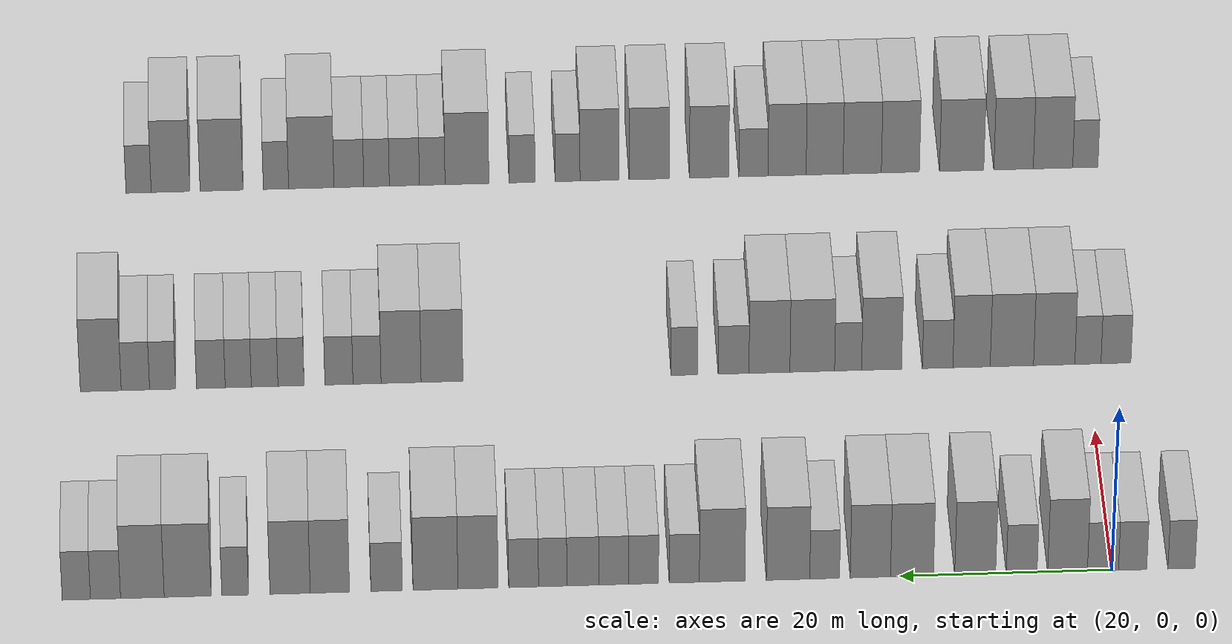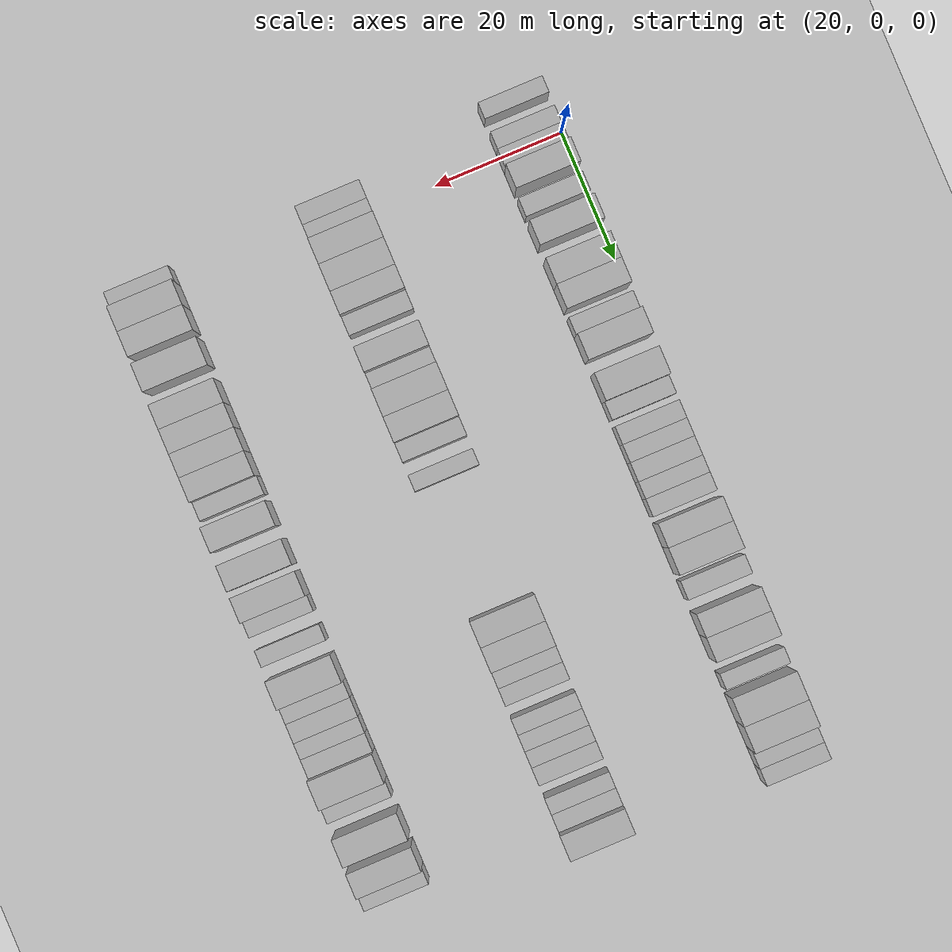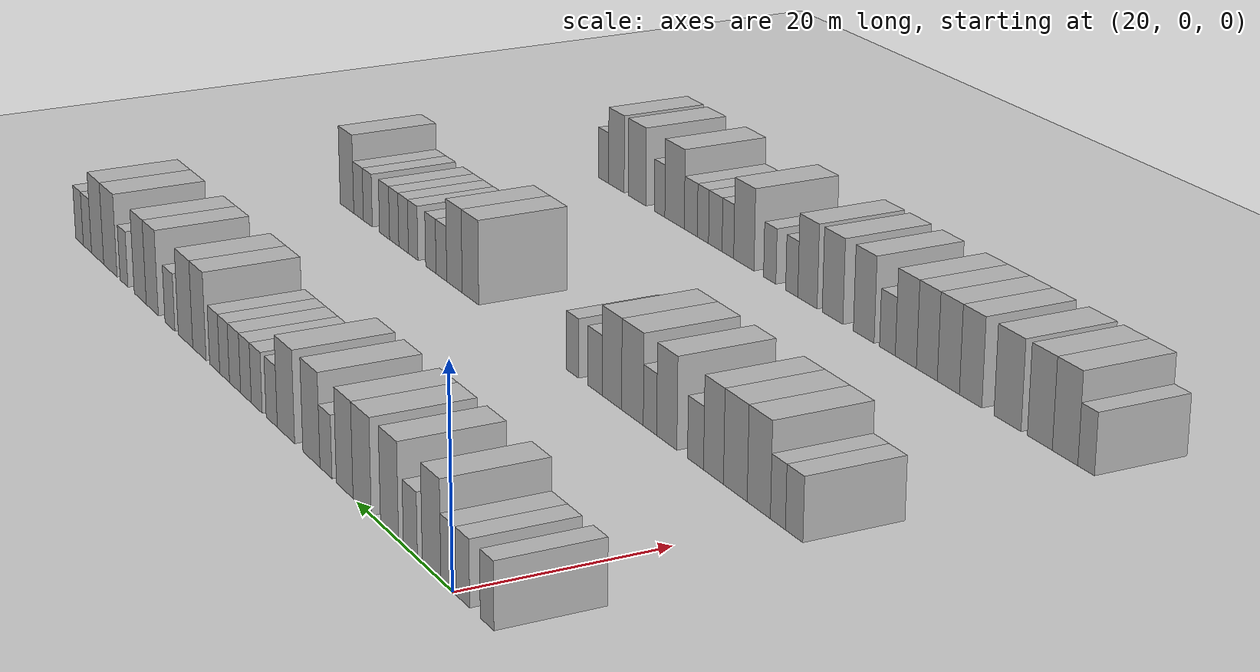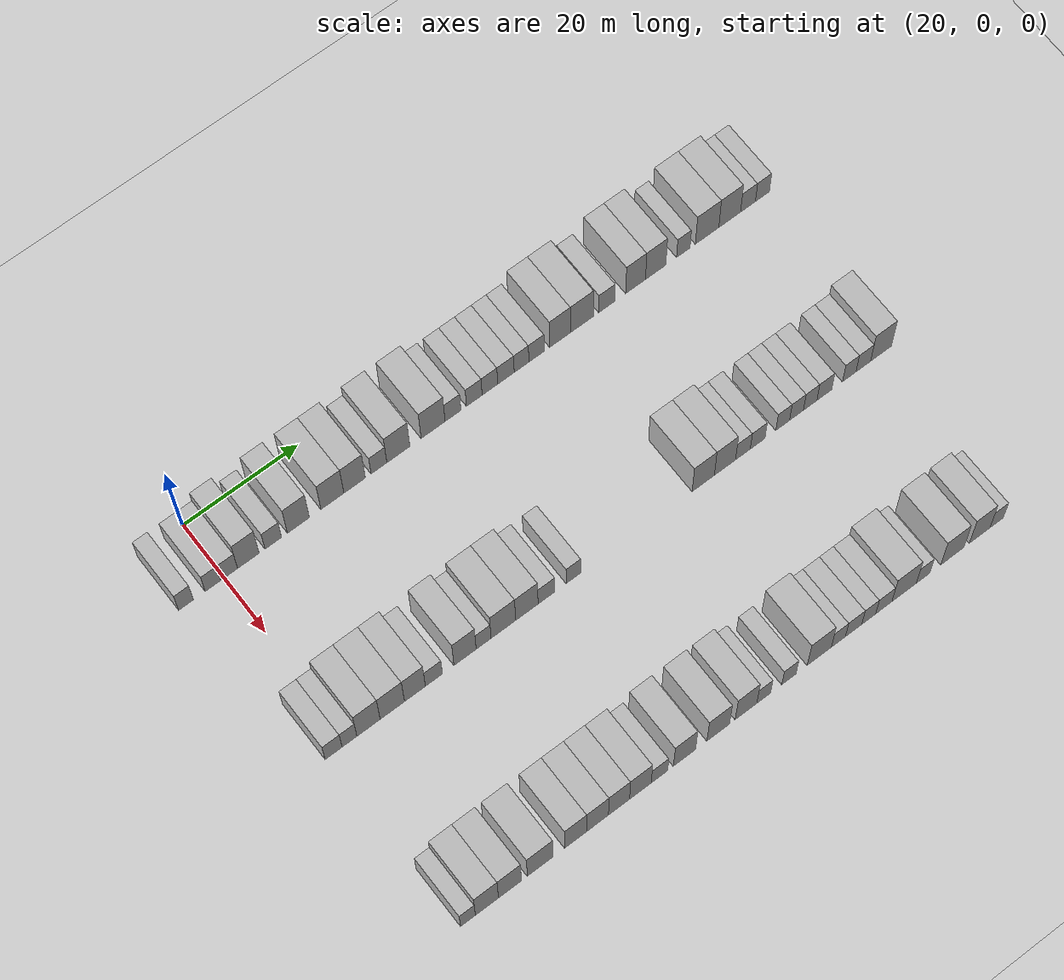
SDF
<sdf version="1.6">
 <world name="default">
  <include><name>ground_plane_1</name><uri>model://HANNAS_ground_plane</uri></include>
  <model name="building_113">
   <static>1</static>
   <pose>25.0000 -6.4764 0 0.000000 0.000000 0.000000</pose>
   <link name="link">
    <pose>0 0 3.00 0 0 0</pose>
    <collision name="collision"><geometry><box><size>10.0000 2.5500 6.0000</size></box></geometry></collision>
    <visual name="visual">
     <cast_shadows>0</cast_shadows>
     <geometry><box><size>10.0000 2.5500 6.0000</size></box></geometry>
     <material>
      <script>
       <uri>model://HANNAS_wall/materials/scripts</uri>
       <uri>model://HANNAS_wall/materials/textures</uri>
       <name>vrc/HANNAS_wall</name>
      </script>
     </material>
    </visual>
   </link>
  </model>
  <model name="building_114">
   <static>1</static>
   <pose>25.0000 -1.8726 0 0.000000 0.000000 0.000000</pose>
   <link name="link">
    <pose>0 0 3.00 0 0 0</pose>
    <collision name="collision"><geometry><box><size>10.0000 2.6576 6.0000</size></box></geometry></collision>
    <visual name="visual">
     <cast_shadows>0</cast_shadows>
     <geometry><box><size>10.0000 2.6576 6.0000</size></box></geometry>
     <material>
      <script>
       <uri>model://HANNAS_wall/materials/scripts</uri>
       <uri>model://HANNAS_wall/materials/textures</uri>
       <name>vrc/HANNAS_wall</name>
      </script>
     </material>
    </visual>
   </link>
  </model>
  <model name="building_115">
   <static>1</static>
   <pose>25.0000 0.9179 0 0.000000 0.000000 0.000000</pose>
   <link name="link">
    <pose>0 0 3.00 0 0 0</pose>
    <collision name="collision"><geometry><box><size>10.0000 2.9234 6.0000</size></box></geometry></collision>
    <visual name="visual">
     <cast_shadows>0</cast_shadows>
     <geometry><box><size>10.0000 2.9234 6.0000</size></box></geometry>
     <material>
      <script>
       <uri>model://HANNAS_wall/materials/scripts</uri>
       <uri>model://HANNAS_wall/materials/textures</uri>
       <name>vrc/HANNAS_wall</name>
      </script>
     </material>
    </visual>
   </link>
  </model>
  <model name="building_116">
   <static>1</static>
   <pose>25.0000 4.2474 0 0.000000 0.000000 0.000000</pose>
   <link name="link">
    <pose>0 0 4.50 0 0 0</pose>
    <collision name="collision"><geometry><box><size>10.0000 3.7355 9.0000</size></box></geometry></collision>
    <visual name="visual">
     <cast_shadows>0</cast_shadows>
     <geometry><box><size>10.0000 3.7355 9.0000</size></box></geometry>
     <material>
      <script>
       <uri>model://HANNAS_wall/materials/scripts</uri>
       <uri>model://HANNAS_wall/materials/textures</uri>
       <name>vrc/HANNAS_wall</name>
      </script>
     </material>
    </visual>
   </link>
  </model>
  <model name="building_117">
   <static>1</static>
   <pose>25.0000 8.5626 0 0.000000 0.000000 0.000000</pose>
   <link name="link">
    <pose>0 0 3.00 0 0 0</pose>
    <collision name="collision"><geometry><box><size>10.0000 2.8949 6.0000</size></box></geometry></collision>
    <visual name="visual">
     <cast_shadows>0</cast_shadows>
     <geometry><box><size>10.0000 2.8949 6.0000</size></box></geometry>
     <material>
      <script>
       <uri>model://HANNAS_wall/materials/scripts</uri>
       <uri>model://HANNAS_wall/materials/textures</uri>
       <name>vrc/HANNAS_wall</name>
      </script>
     </material>
    </visual>
   </link>
  </model>
  <model name="building_118">
   <static>1</static>
   <pose>25.0000 12.9319 0 0.000000 0.000000 0.000000</pose>
   <link name="link">
    <pose>0 0 4.50 0 0 0</pose>
    <collision name="collision"><geometry><box><size>10.0000 3.8437 9.0000</size></box></geometry></collision>
    <visual name="visual">
     <cast_shadows>0</cast_shadows>
     <geometry><box><size>10.0000 3.8437 9.0000</size></box></geometry>
     <material>
      <script>
       <uri>model://HANNAS_wall/materials/scripts</uri>
       <uri>model://HANNAS_wall/materials/textures</uri>
       <name>vrc/HANNAS_wall</name>
      </script>
     </material>
    </visual>
   </link>
  </model>
  <model name="building_119">
   <static>1</static>
   <pose>25.0000 18.8703 0 0.000000 0.000000 0.000000</pose>
   <link name="link">
    <pose>0 0 4.50 0 0 0</pose>
    <collision name="collision"><geometry><box><size>10.0000 4.0331 9.0000</size></box></geometry></collision>
    <visual name="visual">
     <cast_shadows>0</cast_shadows>
     <geometry><box><size>10.0000 4.0331 9.0000</size></box></geometry>
     <material>
      <script>
       <uri>model://HANNAS_wall/materials/scripts</uri>
       <uri>model://HANNAS_wall/materials/textures</uri>
       <name>vrc/HANNAS_wall</name>
      </script>
     </material>
    </visual>
   </link>
  </model>
  <model name="building_120">
   <static>1</static>
   <pose>25.0000 22.7797 0 0.000000 0.000000 0.000000</pose>
   <link name="link">
    <pose>0 0 4.50 0 0 0</pose>
    <collision name="collision"><geometry><box><size>10.0000 3.7856 9.0000</size></box></geometry></collision>
    <visual name="visual">
     <cast_shadows>0</cast_shadows>
     <geometry><box><size>10.0000 3.7856 9.0000</size></box></geometry>
     <material>
      <script>
       <uri>model://HANNAS_wall/materials/scripts</uri>
       <uri>model://HANNAS_wall/materials/textures</uri>
       <name>vrc/HANNAS_wall</name>
      </script>
     </material>
    </visual>
   </link>
  </model>
  <model name="building_121">
   <static>1</static>
   <pose>25.0000 27.0711 0 0.000000 0.000000 0.000000</pose>
   <link name="link">
    <pose>0 0 3.00 0 0 0</pose>
    <collision name="collision"><geometry><box><size>10.0000 2.7973 6.0000</size></box></geometry></collision>
    <visual name="visual">
     <cast_shadows>0</cast_shadows>
     <geometry><box><size>10.0000 2.7973 6.0000</size></box></geometry>
     <material>
      <script>
       <uri>model://HANNAS_wall/materials/scripts</uri>
       <uri>model://HANNAS_wall/materials/textures</uri>
       <name>vrc/HANNAS_wall</name>
      </script>
     </material>
    </visual>
   </link>
  </model>
  <model name="building_122">
   <static>1</static>
   <pose>25.0000 30.5075 0 0.000000 0.000000 0.000000</pose>
   <link name="link">
    <pose>0 0 4.50 0 0 0</pose>
    <collision name="collision"><geometry><box><size>10.0000 4.0754 9.0000</size></box></geometry></collision>
    <visual name="visual">
     <cast_shadows>0</cast_shadows>
     <geometry><box><size>10.0000 4.0754 9.0000</size></box></geometry>
     <material>
      <script>
       <uri>model://HANNAS_wall/materials/scripts</uri>
       <uri>model://HANNAS_wall/materials/textures</uri>
       <name>vrc/HANNAS_wall</name>
      </script>
     </material>
    </visual>
   </link>
  </model>
  <model name="building_123">
   <static>1</static>
   <pose>25.0000 36.6862 0 0.000000 0.000000 0.000000</pose>
   <link name="link">
    <pose>0 0 4.50 0 0 0</pose>
    <collision name="collision"><geometry><box><size>10.0000 4.2821 9.0000</size></box></geometry></collision>
    <visual name="visual">
     <cast_shadows>0</cast_shadows>
     <geometry><box><size>10.0000 4.2821 9.0000</size></box></geometry>
     <material>
      <script>
       <uri>model://HANNAS_wall/materials/scripts</uri>
       <uri>model://HANNAS_wall/materials/textures</uri>
       <name>vrc/HANNAS_wall</name>
      </script>
     </material>
    </visual>
   </link>
  </model>
  <model name="building_124">
   <static>1</static>
   <pose>25.0000 40.2397 0 0.000000 0.000000 0.000000</pose>
   <link name="link">
    <pose>0 0 3.00 0 0 0</pose>
    <collision name="collision"><geometry><box><size>10.0000 2.8249 6.0000</size></box></geometry></collision>
    <visual name="visual">
     <cast_shadows>0</cast_shadows>
     <geometry><box><size>10.0000 2.8249 6.0000</size></box></geometry>
     <material>
      <script>
       <uri>model://HANNAS_wall/materials/scripts</uri>
       <uri>model://HANNAS_wall/materials/textures</uri>
       <name>vrc/HANNAS_wall</name>
      </script>
     </material>
    </visual>
   </link>
  </model>
  <model name="building_125">
   <static>1</static>
   <pose>25.0000 44.0588 0 0.000000 0.000000 0.000000</pose>
   <link name="link">
    <pose>0 0 3.00 0 0 0</pose>
    <collision name="collision"><geometry><box><size>10.0000 2.8134 6.0000</size></box></geometry></collision>
    <visual name="visual">
     <cast_shadows>0</cast_shadows>
     <geometry><box><size>10.0000 2.8134 6.0000</size></box></geometry>
     <material>
      <script>
       <uri>model://HANNAS_wall/materials/scripts</uri>
       <uri>model://HANNAS_wall/materials/textures</uri>
       <name>vrc/HANNAS_wall</name>
      </script>
     </material>
    </visual>
   </link>
  </model>
  <model name="building_126">
   <static>1</static>
   <pose>25.0000 46.8677 0 0.000000 0.000000 0.000000</pose>
   <link name="link">
    <pose>0 0 3.00 0 0 0</pose>
    <collision name="collision"><geometry><box><size>10.0000 2.8043 6.0000</size></box></geometry></collision>
    <visual name="visual">
     <cast_shadows>0</cast_shadows>
     <geometry><box><size>10.0000 2.8043 6.0000</size></box></geometry>
     <material>
      <script>
       <uri>model://HANNAS_wall/materials/scripts</uri>
       <uri>model://HANNAS_wall/materials/textures</uri>
       <name>vrc/HANNAS_wall</name>
      </script>
     </material>
    </visual>
   </link>
  </model>
  <model name="building_127">
   <static>1</static>
   <pose>25.0000 49.7630 0 0.000000 0.000000 0.000000</pose>
   <link name="link">
    <pose>0 0 3.00 0 0 0</pose>
    <collision name="collision"><geometry><box><size>10.0000 2.9864 6.0000</size></box></geometry></collision>
    <visual name="visual">
     <cast_shadows>0</cast_shadows>
     <geometry><box><size>10.0000 2.9864 6.0000</size></box></geometry>
     <material>
      <script>
       <uri>model://HANNAS_wall/materials/scripts</uri>
       <uri>model://HANNAS_wall/materials/textures</uri>
       <name>vrc/HANNAS_wall</name>
      </script>
     </material>
    </visual>
   </link>
  </model>
  <model name="building_128">
   <static>1</static>
   <pose>25.0000 52.5827 0 0.000000 0.000000 0.000000</pose>
   <link name="link">
    <pose>0 0 3.00 0 0 0</pose>
    <collision name="collision"><geometry><box><size>10.0000 2.6529 6.0000</size></box></geometry></collision>
    <visual name="visual">
     <cast_shadows>0</cast_shadows>
     <geometry><box><size>10.0000 2.6529 6.0000</size></box></geometry>
     <material>
      <script>
       <uri>model://HANNAS_wall/materials/scripts</uri>
       <uri>model://HANNAS_wall/materials/textures</uri>
       <name>vrc/HANNAS_wall</name>
      </script>
     </material>
    </visual>
   </link>
  </model>
  <model name="building_129">
   <static>1</static>
   <pose>25.0000 55.3031 0 0.000000 0.000000 0.000000</pose>
   <link name="link">
    <pose>0 0 3.00 0 0 0</pose>
    <collision name="collision"><geometry><box><size>10.0000 2.7879 6.0000</size></box></geometry></collision>
    <visual name="visual">
     <cast_shadows>0</cast_shadows>
     <geometry><box><size>10.0000 2.7879 6.0000</size></box></geometry>
     <material>
      <script>
       <uri>model://HANNAS_wall/materials/scripts</uri>
       <uri>model://HANNAS_wall/materials/textures</uri>
       <name>vrc/HANNAS_wall</name>
      </script>
     </material>
    </visual>
   </link>
  </model>
  <model name="building_130">
   <static>1</static>
   <pose>25.0000 59.5758 0 0.000000 0.000000 0.000000</pose>
   <link name="link">
    <pose>0 0 4.50 0 0 0</pose>
    <collision name="collision"><geometry><box><size>10.0000 3.7576 9.0000</size></box></geometry></collision>
    <visual name="visual">
     <cast_shadows>0</cast_shadows>
     <geometry><box><size>10.0000 3.7576 9.0000</size></box></geometry>
     <material>
      <script>
       <uri>model://HANNAS_wall/materials/scripts</uri>
       <uri>model://HANNAS_wall/materials/textures</uri>
       <name>vrc/HANNAS_wall</name>
      </script>
     </material>
    </visual>
   </link>
  </model>
  <model name="building_131">
   <static>1</static>
   <pose>25.0000 63.5560 0 0.000000 0.000000 0.000000</pose>
   <link name="link">
    <pose>0 0 4.50 0 0 0</pose>
    <collision name="collision"><geometry><box><size>10.0000 4.2028 9.0000</size></box></geometry></collision>
    <visual name="visual">
     <cast_shadows>0</cast_shadows>
     <geometry><box><size>10.0000 4.2028 9.0000</size></box></geometry>
     <material>
      <script>
       <uri>model://HANNAS_wall/materials/scripts</uri>
       <uri>model://HANNAS_wall/materials/textures</uri>
       <name>vrc/HANNAS_wall</name>
      </script>
     </material>
    </visual>
   </link>
  </model>
  <model name="building_132">
   <static>1</static>
   <pose>25.0000 68.1324 0 0.000000 0.000000 0.000000</pose>
   <link name="link">
    <pose>0 0 3.00 0 0 0</pose>
    <collision name="collision"><geometry><box><size>10.0000 2.9500 6.0000</size></box></geometry></collision>
    <visual name="visual">
     <cast_shadows>0</cast_shadows>
     <geometry><box><size>10.0000 2.9500 6.0000</size></box></geometry>
     <material>
      <script>
       <uri>model://HANNAS_wall/materials/scripts</uri>
       <uri>model://HANNAS_wall/materials/textures</uri>
       <name>vrc/HANNAS_wall</name>
      </script>
     </material>
    </visual>
   </link>
  </model>
  <model name="building_133">
   <static>1</static>
   <pose>25.0000 73.4419 0 0.000000 0.000000 0.000000</pose>
   <link name="link">
    <pose>0 0 4.50 0 0 0</pose>
    <collision name="collision"><geometry><box><size>10.0000 3.6689 9.0000</size></box></geometry></collision>
    <visual name="visual">
     <cast_shadows>0</cast_shadows>
     <geometry><box><size>10.0000 3.6689 9.0000</size></box></geometry>
     <material>
      <script>
       <uri>model://HANNAS_wall/materials/scripts</uri>
       <uri>model://HANNAS_wall/materials/textures</uri>
       <name>vrc/HANNAS_wall</name>
      </script>
     </material>
    </visual>
   </link>
  </model>
  <model name="building_134">
   <static>1</static>
   <pose>25.0000 77.1608 0 0.000000 0.000000 0.000000</pose>
   <link name="link">
    <pose>0 0 4.50 0 0 0</pose>
    <collision name="collision"><geometry><box><size>10.0000 3.7689 9.0000</size></box></geometry></collision>
    <visual name="visual">
     <cast_shadows>0</cast_shadows>
     <geometry><box><size>10.0000 3.7689 9.0000</size></box></geometry>
     <material>
      <script>
       <uri>model://HANNAS_wall/materials/scripts</uri>
       <uri>model://HANNAS_wall/materials/textures</uri>
       <name>vrc/HANNAS_wall</name>
      </script>
     </material>
    </visual>
   </link>
  </model>
  <model name="building_135">
   <static>1</static>
   <pose>25.0000 82.2953 0 0.000000 0.000000 0.000000</pose>
   <link name="link">
    <pose>0 0 3.00 0 0 0</pose>
    <collision name="collision"><geometry><box><size>10.0000 2.4999 6.0000</size></box></geometry></collision>
    <visual name="visual">
     <cast_shadows>0</cast_shadows>
     <geometry><box><size>10.0000 2.4999 6.0000</size></box></geometry>
     <material>
      <script>
       <uri>model://HANNAS_wall/materials/scripts</uri>
       <uri>model://HANNAS_wall/materials/textures</uri>
       <name>vrc/HANNAS_wall</name>
      </script>
     </material>
    </visual>
   </link>
  </model>
  <model name="building_136">
   <static>1</static>
   <pose>25.0000 86.7389 0 0.000000 0.000000 0.000000</pose>
   <link name="link">
    <pose>0 0 4.50 0 0 0</pose>
    <collision name="collision"><geometry><box><size>10.0000 4.3873 9.0000</size></box></geometry></collision>
    <visual name="visual">
     <cast_shadows>0</cast_shadows>
     <geometry><box><size>10.0000 4.3873 9.0000</size></box></geometry>
     <material>
      <script>
       <uri>model://HANNAS_wall/materials/scripts</uri>
       <uri>model://HANNAS_wall/materials/textures</uri>
       <name>vrc/HANNAS_wall</name>
      </script>
     </material>
    </visual>
   </link>
  </model>
  <model name="building_137">
   <static>1</static>
   <pose>25.0000 90.9745 0 0.000000 0.000000 0.000000</pose>
   <link name="link">
    <pose>0 0 4.50 0 0 0</pose>
    <collision name="collision"><geometry><box><size>10.0000 4.0841 9.0000</size></box></geometry></collision>
    <visual name="visual">
     <cast_shadows>0</cast_shadows>
     <geometry><box><size>10.0000 4.0841 9.0000</size></box></geometry>
     <material>
      <script>
       <uri>model://HANNAS_wall/materials/scripts</uri>
       <uri>model://HANNAS_wall/materials/textures</uri>
       <name>vrc/HANNAS_wall</name>
      </script>
     </material>
    </visual>
   </link>
  </model>
  <model name="building_138">
   <static>1</static>
   <pose>25.0000 94.4198 0 0.000000 0.000000 0.000000</pose>
   <link name="link">
    <pose>0 0 3.00 0 0 0</pose>
    <collision name="collision"><geometry><box><size>10.0000 2.8065 6.0000</size></box></geometry></collision>
    <visual name="visual">
     <cast_shadows>0</cast_shadows>
     <geometry><box><size>10.0000 2.8065 6.0000</size></box></geometry>
     <material>
      <script>
       <uri>model://HANNAS_wall/materials/scripts</uri>
       <uri>model://HANNAS_wall/materials/textures</uri>
       <name>vrc/HANNAS_wall</name>
      </script>
     </material>
    </visual>
   </link>
  </model>
  <model name="building_139">
   <static>1</static>
   <pose>25.0000 97.1392 0 0.000000 0.000000 0.000000</pose>
   <link name="link">
    <pose>0 0 3.00 0 0 0</pose>
    <collision name="collision"><geometry><box><size>10.0000 2.6323 6.0000</size></box></geometry></collision>
    <visual name="visual">
     <cast_shadows>0</cast_shadows>
     <geometry><box><size>10.0000 2.6323 6.0000</size></box></geometry>
     <material>
      <script>
       <uri>model://HANNAS_wall/materials/scripts</uri>
       <uri>model://HANNAS_wall/materials/textures</uri>
       <name>vrc/HANNAS_wall</name>
      </script>
     </material>
    </visual>
   </link>
  </model>
  <model name="building_345">
   <static>1</static>
   <pose>55.0000 -2.8157 0 0.000000 0.000000 0.000000</pose>
   <link name="link">
    <pose>0 0 3.00 0 0 0</pose>
    <collision name="collision"><geometry><box><size>10.0000 2.8895 6.0000</size></box></geometry></collision>
    <visual name="visual">
     <cast_shadows>0</cast_shadows>
     <geometry><box><size>10.0000 2.8895 6.0000</size></box></geometry>
     <material>
      <script>
       <uri>model://HANNAS_wall/materials/scripts</uri>
       <uri>model://HANNAS_wall/materials/textures</uri>
       <name>vrc/HANNAS_wall</name>
      </script>
     </material>
    </visual>
   </link>
  </model>
  <model name="building_346">
   <static>1</static>
   <pose>55.0000 -0.1084 0 0.000000 0.000000 0.000000</pose>
   <link name="link">
    <pose>0 0 3.00 0 0 0</pose>
    <collision name="collision"><geometry><box><size>10.0000 2.5249 6.0000</size></box></geometry></collision>
    <visual name="visual">
     <cast_shadows>0</cast_shadows>
     <geometry><box><size>10.0000 2.5249 6.0000</size></box></geometry>
     <material>
      <script>
       <uri>model://HANNAS_wall/materials/scripts</uri>
       <uri>model://HANNAS_wall/materials/textures</uri>
       <name>vrc/HANNAS_wall</name>
      </script>
     </material>
    </visual>
   </link>
  </model>
  <model name="building_347">
   <static>1</static>
   <pose>55.0000 3.1487 0 0.000000 0.000000 0.000000</pose>
   <link name="link">
    <pose>0 0 4.50 0 0 0</pose>
    <collision name="collision"><geometry><box><size>10.0000 3.9894 9.0000</size></box></geometry></collision>
    <visual name="visual">
     <cast_shadows>0</cast_shadows>
     <geometry><box><size>10.0000 3.9894 9.0000</size></box></geometry>
     <material>
      <script>
       <uri>model://HANNAS_wall/materials/scripts</uri>
       <uri>model://HANNAS_wall/materials/textures</uri>
       <name>vrc/HANNAS_wall</name>
      </script>
     </material>
    </visual>
   </link>
  </model>
  <model name="building_348">
   <static>1</static>
   <pose>55.0000 7.2363 0 0.000000 0.000000 0.000000</pose>
   <link name="link">
    <pose>0 0 4.50 0 0 0</pose>
    <collision name="collision"><geometry><box><size>10.0000 4.1858 9.0000</size></box></geometry></collision>
    <visual name="visual">
     <cast_shadows>0</cast_shadows>
     <geometry><box><size>10.0000 4.1858 9.0000</size></box></geometry>
     <material>
      <script>
       <uri>model://HANNAS_wall/materials/scripts</uri>
       <uri>model://HANNAS_wall/materials/textures</uri>
       <name>vrc/HANNAS_wall</name>
      </script>
     </material>
    </visual>
   </link>
  </model>
  <model name="building_349">
   <static>1</static>
   <pose>55.0000 11.1294 0 0.000000 0.000000 0.000000</pose>
   <link name="link">
    <pose>0 0 4.50 0 0 0</pose>
    <collision name="collision"><geometry><box><size>10.0000 3.6004 9.0000</size></box></geometry></collision>
    <visual name="visual">
     <cast_shadows>0</cast_shadows>
     <geometry><box><size>10.0000 3.6004 9.0000</size></box></geometry>
     <material>
      <script>
       <uri>model://HANNAS_wall/materials/scripts</uri>
       <uri>model://HANNAS_wall/materials/textures</uri>
       <name>vrc/HANNAS_wall</name>
      </script>
     </material>
    </visual>
   </link>
  </model>
  <model name="building_350">
   <static>1</static>
   <pose>55.0000 14.4045 0 0.000000 0.000000 0.000000</pose>
   <link name="link">
    <pose>0 0 3.00 0 0 0</pose>
    <collision name="collision"><geometry><box><size>10.0000 2.9497 6.0000</size></box></geometry></collision>
    <visual name="visual">
     <cast_shadows>0</cast_shadows>
     <geometry><box><size>10.0000 2.9497 6.0000</size></box></geometry>
     <material>
      <script>
       <uri>model://HANNAS_wall/materials/scripts</uri>
       <uri>model://HANNAS_wall/materials/textures</uri>
       <name>vrc/HANNAS_wall</name>
      </script>
     </material>
    </visual>
   </link>
  </model>
  <model name="building_351">
   <static>1</static>
   <pose>55.0000 19.8089 0 0.000000 0.000000 0.000000</pose>
   <link name="link">
    <pose>0 0 4.50 0 0 0</pose>
    <collision name="collision"><geometry><box><size>10.0000 3.8591 9.0000</size></box></geometry></collision>
    <visual name="visual">
     <cast_shadows>0</cast_shadows>
     <geometry><box><size>10.0000 3.8591 9.0000</size></box></geometry>
     <material>
      <script>
       <uri>model://HANNAS_wall/materials/scripts</uri>
       <uri>model://HANNAS_wall/materials/textures</uri>
       <name>vrc/HANNAS_wall</name>
      </script>
     </material>
    </visual>
   </link>
  </model>
  <model name="building_352">
   <static>1</static>
   <pose>55.0000 23.0390 0 0.000000 0.000000 0.000000</pose>
   <link name="link">
    <pose>0 0 3.00 0 0 0</pose>
    <collision name="collision"><geometry><box><size>10.0000 2.6013 6.0000</size></box></geometry></collision>
    <visual name="visual">
     <cast_shadows>0</cast_shadows>
     <geometry><box><size>10.0000 2.6013 6.0000</size></box></geometry>
     <material>
      <script>
       <uri>model://HANNAS_wall/materials/scripts</uri>
       <uri>model://HANNAS_wall/materials/textures</uri>
       <name>vrc/HANNAS_wall</name>
      </script>
     </material>
    </visual>
   </link>
  </model>
  <model name="building_353">
   <static>1</static>
   <pose>55.0000 26.4936 0 0.000000 0.000000 0.000000</pose>
   <link name="link">
    <pose>0 0 4.50 0 0 0</pose>
    <collision name="collision"><geometry><box><size>10.0000 4.3079 9.0000</size></box></geometry></collision>
    <visual name="visual">
     <cast_shadows>0</cast_shadows>
     <geometry><box><size>10.0000 4.3079 9.0000</size></box></geometry>
     <material>
      <script>
       <uri>model://HANNAS_wall/materials/scripts</uri>
       <uri>model://HANNAS_wall/materials/textures</uri>
       <name>vrc/HANNAS_wall</name>
      </script>
     </material>
    </visual>
   </link>
  </model>
  <model name="building_354">
   <static>1</static>
   <pose>55.0000 30.6224 0 0.000000 0.000000 0.000000</pose>
   <link name="link">
    <pose>0 0 4.50 0 0 0</pose>
    <collision name="collision"><geometry><box><size>10.0000 3.9496 9.0000</size></box></geometry></collision>
    <visual name="visual">
     <cast_shadows>0</cast_shadows>
     <geometry><box><size>10.0000 3.9496 9.0000</size></box></geometry>
     <material>
      <script>
       <uri>model://HANNAS_wall/materials/scripts</uri>
       <uri>model://HANNAS_wall/materials/textures</uri>
       <name>vrc/HANNAS_wall</name>
      </script>
     </material>
    </visual>
   </link>
  </model>
  <model name="building_355">
   <static>1</static>
   <pose>55.0000 34.0785 0 0.000000 0.000000 0.000000</pose>
   <link name="link">
    <pose>0 0 3.00 0 0 0</pose>
    <collision name="collision"><geometry><box><size>10.0000 2.9627 6.0000</size></box></geometry></collision>
    <visual name="visual">
     <cast_shadows>0</cast_shadows>
     <geometry><box><size>10.0000 2.9627 6.0000</size></box></geometry>
     <material>
      <script>
       <uri>model://HANNAS_wall/materials/scripts</uri>
       <uri>model://HANNAS_wall/materials/textures</uri>
       <name>vrc/HANNAS_wall</name>
      </script>
     </material>
    </visual>
   </link>
  </model>
  <model name="building_356">
   <static>1</static>
   <pose>55.0000 38.8315 0 0.000000 0.000000 0.000000</pose>
   <link name="link">
    <pose>0 0 3.00 0 0 0</pose>
    <collision name="collision"><geometry><box><size>10.0000 2.5432 6.0000</size></box></geometry></collision>
    <visual name="visual">
     <cast_shadows>0</cast_shadows>
     <geometry><box><size>10.0000 2.5432 6.0000</size></box></geometry>
     <material>
      <script>
       <uri>model://HANNAS_wall/materials/scripts</uri>
       <uri>model://HANNAS_wall/materials/textures</uri>
       <name>vrc/HANNAS_wall</name>
      </script>
     </material>
    </visual>
   </link>
  </model>
  <model name="building_357">
   <static>1</static>
   <pose>55.0000 62.1427 0 0.000000 0.000000 0.000000</pose>
   <link name="link">
    <pose>0 0 4.50 0 0 0</pose>
    <collision name="collision"><geometry><box><size>10.0000 4.0264 9.0000</size></box></geometry></collision>
    <visual name="visual">
     <cast_shadows>0</cast_shadows>
     <geometry><box><size>10.0000 4.0264 9.0000</size></box></geometry>
     <material>
      <script>
       <uri>model://HANNAS_wall/materials/scripts</uri>
       <uri>model://HANNAS_wall/materials/textures</uri>
       <name>vrc/HANNAS_wall</name>
      </script>
     </material>
    </visual>
   </link>
  </model>
  <model name="building_358">
   <static>1</static>
   <pose>55.0000 66.0798 0 0.000000 0.000000 0.000000</pose>
   <link name="link">
    <pose>0 0 4.50 0 0 0</pose>
    <collision name="collision"><geometry><box><size>10.0000 3.8477 9.0000</size></box></geometry></collision>
    <visual name="visual">
     <cast_shadows>0</cast_shadows>
     <geometry><box><size>10.0000 3.8477 9.0000</size></box></geometry>
     <material>
      <script>
       <uri>model://HANNAS_wall/materials/scripts</uri>
       <uri>model://HANNAS_wall/materials/textures</uri>
       <name>vrc/HANNAS_wall</name>
      </script>
     </material>
    </visual>
   </link>
  </model>
  <model name="building_359">
   <static>1</static>
   <pose>55.0000 69.3534 0 0.000000 0.000000 0.000000</pose>
   <link name="link">
    <pose>0 0 3.00 0 0 0</pose>
    <collision name="collision"><geometry><box><size>10.0000 2.6995 6.0000</size></box></geometry></collision>
    <visual name="visual">
     <cast_shadows>0</cast_shadows>
     <geometry><box><size>10.0000 2.6995 6.0000</size></box></geometry>
     <material>
      <script>
       <uri>model://HANNAS_wall/materials/scripts</uri>
       <uri>model://HANNAS_wall/materials/textures</uri>
       <name>vrc/HANNAS_wall</name>
      </script>
     </material>
    </visual>
   </link>
  </model>
  <model name="building_360">
   <static>1</static>
   <pose>55.0000 72.0508 0 0.000000 0.000000 0.000000</pose>
   <link name="link">
    <pose>0 0 3.00 0 0 0</pose>
    <collision name="collision"><geometry><box><size>10.0000 2.6952 6.0000</size></box></geometry></collision>
    <visual name="visual">
     <cast_shadows>0</cast_shadows>
     <geometry><box><size>10.0000 2.6952 6.0000</size></box></geometry>
     <material>
      <script>
       <uri>model://HANNAS_wall/materials/scripts</uri>
       <uri>model://HANNAS_wall/materials/textures</uri>
       <name>vrc/HANNAS_wall</name>
      </script>
     </material>
    </visual>
   </link>
  </model>
  <model name="building_361">
   <static>1</static>
   <pose>55.0000 76.6533 0 0.000000 0.000000 0.000000</pose>
   <link name="link">
    <pose>0 0 3.00 0 0 0</pose>
    <collision name="collision"><geometry><box><size>10.0000 2.5098 6.0000</size></box></geometry></collision>
    <visual name="visual">
     <cast_shadows>0</cast_shadows>
     <geometry><box><size>10.0000 2.5098 6.0000</size></box></geometry>
     <material>
      <script>
       <uri>model://HANNAS_wall/materials/scripts</uri>
       <uri>model://HANNAS_wall/materials/textures</uri>
       <name>vrc/HANNAS_wall</name>
      </script>
     </material>
    </visual>
   </link>
  </model>
  <model name="building_362">
   <static>1</static>
   <pose>55.0000 79.1882 0 0.000000 0.000000 0.000000</pose>
   <link name="link">
    <pose>0 0 3.00 0 0 0</pose>
    <collision name="collision"><geometry><box><size>10.0000 2.5599 6.0000</size></box></geometry></collision>
    <visual name="visual">
     <cast_shadows>0</cast_shadows>
     <geometry><box><size>10.0000 2.5599 6.0000</size></box></geometry>
     <material>
      <script>
       <uri>model://HANNAS_wall/materials/scripts</uri>
       <uri>model://HANNAS_wall/materials/textures</uri>
       <name>vrc/HANNAS_wall</name>
      </script>
     </material>
    </visual>
   </link>
  </model>
  <model name="building_363">
   <static>1</static>
   <pose>55.0000 81.7186 0 0.000000 0.000000 0.000000</pose>
   <link name="link">
    <pose>0 0 3.00 0 0 0</pose>
    <collision name="collision"><geometry><box><size>10.0000 2.5009 6.0000</size></box></geometry></collision>
    <visual name="visual">
     <cast_shadows>0</cast_shadows>
     <geometry><box><size>10.0000 2.5009 6.0000</size></box></geometry>
     <material>
      <script>
       <uri>model://HANNAS_wall/materials/scripts</uri>
       <uri>model://HANNAS_wall/materials/textures</uri>
       <name>vrc/HANNAS_wall</name>
      </script>
     </material>
    </visual>
   </link>
  </model>
  <model name="building_364">
   <static>1</static>
   <pose>55.0000 84.3456 0 0.000000 0.000000 0.000000</pose>
   <link name="link">
    <pose>0 0 3.00 0 0 0</pose>
    <collision name="collision"><geometry><box><size>10.0000 2.7531 6.0000</size></box></geometry></collision>
    <visual name="visual">
     <cast_shadows>0</cast_shadows>
     <geometry><box><size>10.0000 2.7531 6.0000</size></box></geometry>
     <material>
      <script>
       <uri>model://HANNAS_wall/materials/scripts</uri>
       <uri>model://HANNAS_wall/materials/textures</uri>
       <name>vrc/HANNAS_wall</name>
      </script>
     </material>
    </visual>
   </link>
  </model>
  <model name="building_365">
   <static>1</static>
   <pose>55.0000 88.9772 0 0.000000 0.000000 0.000000</pose>
   <link name="link">
    <pose>0 0 3.00 0 0 0</pose>
    <collision name="collision"><geometry><box><size>10.0000 2.5101 6.0000</size></box></geometry></collision>
    <visual name="visual">
     <cast_shadows>0</cast_shadows>
     <geometry><box><size>10.0000 2.5101 6.0000</size></box></geometry>
     <material>
      <script>
       <uri>model://HANNAS_wall/materials/scripts</uri>
       <uri>model://HANNAS_wall/materials/textures</uri>
       <name>vrc/HANNAS_wall</name>
      </script>
     </material>
    </visual>
   </link>
  </model>
  <model name="building_366">
   <static>1</static>
   <pose>55.0000 91.5942 0 0.000000 0.000000 0.000000</pose>
   <link name="link">
    <pose>0 0 3.00 0 0 0</pose>
    <collision name="collision"><geometry><box><size>10.0000 2.7239 6.0000</size></box></geometry></collision>
    <visual name="visual">
     <cast_shadows>0</cast_shadows>
     <geometry><box><size>10.0000 2.7239 6.0000</size></box></geometry>
     <material>
      <script>
       <uri>model://HANNAS_wall/materials/scripts</uri>
       <uri>model://HANNAS_wall/materials/textures</uri>
       <name>vrc/HANNAS_wall</name>
      </script>
     </material>
    </visual>
   </link>
  </model>
  <model name="building_367">
   <static>1</static>
   <pose>55.0000 94.9150 0 0.000000 0.000000 0.000000</pose>
   <link name="link">
    <pose>0 0 4.50 0 0 0</pose>
    <collision name="collision"><geometry><box><size>10.0000 3.9176 9.0000</size></box></geometry></collision>
    <visual name="visual">
     <cast_shadows>0</cast_shadows>
     <geometry><box><size>10.0000 3.9176 9.0000</size></box></geometry>
     <material>
      <script>
       <uri>model://HANNAS_wall/materials/scripts</uri>
       <uri>model://HANNAS_wall/materials/textures</uri>
       <name>vrc/HANNAS_wall</name>
      </script>
     </material>
    </visual>
   </link>
  </model>
  <model name="building_553">
   <static>1</static>
   <pose>85.0000 -2.2874 0 0.000000 0.000000 0.000000</pose>
   <link name="link">
    <pose>0 0 3.00 0 0 0</pose>
    <collision name="collision"><geometry><box><size>10.0000 2.5009 6.0000</size></box></geometry></collision>
    <visual name="visual">
     <cast_shadows>0</cast_shadows>
     <geometry><box><size>10.0000 2.5009 6.0000</size></box></geometry>
     <material>
      <script>
       <uri>model://HANNAS_wall/materials/scripts</uri>
       <uri>model://HANNAS_wall/materials/textures</uri>
       <name>vrc/HANNAS_wall</name>
      </script>
     </material>
    </visual>
   </link>
  </model>
  <model name="building_554">
   <static>1</static>
   <pose>85.0000 0.9159 0 0.000000 0.000000 0.000000</pose>
   <link name="link">
    <pose>0 0 4.50 0 0 0</pose>
    <collision name="collision"><geometry><box><size>10.0000 3.9057 9.0000</size></box></geometry></collision>
    <visual name="visual">
     <cast_shadows>0</cast_shadows>
     <geometry><box><size>10.0000 3.9057 9.0000</size></box></geometry>
     <material>
      <script>
       <uri>model://HANNAS_wall/materials/scripts</uri>
       <uri>model://HANNAS_wall/materials/textures</uri>
       <name>vrc/HANNAS_wall</name>
      </script>
     </material>
    </visual>
   </link>
  </model>
  <model name="building_555">
   <static>1</static>
   <pose>85.0000 4.8206 0 0.000000 0.000000 0.000000</pose>
   <link name="link">
    <pose>0 0 4.50 0 0 0</pose>
    <collision name="collision"><geometry><box><size>10.0000 3.9038 9.0000</size></box></geometry></collision>
    <visual name="visual">
     <cast_shadows>0</cast_shadows>
     <geometry><box><size>10.0000 3.9038 9.0000</size></box></geometry>
     <material>
      <script>
       <uri>model://HANNAS_wall/materials/scripts</uri>
       <uri>model://HANNAS_wall/materials/textures</uri>
       <name>vrc/HANNAS_wall</name>
      </script>
     </material>
    </visual>
   </link>
  </model>
  <model name="building_556">
   <static>1</static>
   <pose>85.0000 9.9629 0 0.000000 0.000000 0.000000</pose>
   <link name="link">
    <pose>0 0 4.50 0 0 0</pose>
    <collision name="collision"><geometry><box><size>10.0000 4.3808 9.0000</size></box></geometry></collision>
    <visual name="visual">
     <cast_shadows>0</cast_shadows>
     <geometry><box><size>10.0000 4.3808 9.0000</size></box></geometry>
     <material>
      <script>
       <uri>model://HANNAS_wall/materials/scripts</uri>
       <uri>model://HANNAS_wall/materials/textures</uri>
       <name>vrc/HANNAS_wall</name>
      </script>
     </material>
    </visual>
   </link>
  </model>
  <model name="building_557">
   <static>1</static>
   <pose>85.0000 16.0359 0 0.000000 0.000000 0.000000</pose>
   <link name="link">
    <pose>0 0 4.50 0 0 0</pose>
    <collision name="collision"><geometry><box><size>10.0000 3.7652 9.0000</size></box></geometry></collision>
    <visual name="visual">
     <cast_shadows>0</cast_shadows>
     <geometry><box><size>10.0000 3.7652 9.0000</size></box></geometry>
     <material>
      <script>
       <uri>model://HANNAS_wall/materials/scripts</uri>
       <uri>model://HANNAS_wall/materials/textures</uri>
       <name>vrc/HANNAS_wall</name>
      </script>
     </material>
    </visual>
   </link>
  </model>
  <model name="building_558">
   <static>1</static>
   <pose>85.0000 19.8126 0 0.000000 0.000000 0.000000</pose>
   <link name="link">
    <pose>0 0 4.50 0 0 0</pose>
    <collision name="collision"><geometry><box><size>10.0000 3.7882 9.0000</size></box></geometry></collision>
    <visual name="visual">
     <cast_shadows>0</cast_shadows>
     <geometry><box><size>10.0000 3.7882 9.0000</size></box></geometry>
     <material>
      <script>
       <uri>model://HANNAS_wall/materials/scripts</uri>
       <uri>model://HANNAS_wall/materials/textures</uri>
       <name>vrc/HANNAS_wall</name>
      </script>
     </material>
    </visual>
   </link>
  </model>
  <model name="building_559">
   <static>1</static>
   <pose>85.0000 23.5359 0 0.000000 0.000000 0.000000</pose>
   <link name="link">
    <pose>0 0 4.50 0 0 0</pose>
    <collision name="collision"><geometry><box><size>10.0000 3.6582 9.0000</size></box></geometry></collision>
    <visual name="visual">
     <cast_shadows>0</cast_shadows>
     <geometry><box><size>10.0000 3.6582 9.0000</size></box></geometry>
     <material>
      <script>
       <uri>model://HANNAS_wall/materials/scripts</uri>
       <uri>model://HANNAS_wall/materials/textures</uri>
       <name>vrc/HANNAS_wall</name>
      </script>
     </material>
    </visual>
   </link>
  </model>
  <model name="building_560">
   <static>1</static>
   <pose>85.0000 27.2534 0 0.000000 0.000000 0.000000</pose>
   <link name="link">
    <pose>0 0 4.50 0 0 0</pose>
    <collision name="collision"><geometry><box><size>10.0000 3.7768 9.0000</size></box></geometry></collision>
    <visual name="visual">
     <cast_shadows>0</cast_shadows>
     <geometry><box><size>10.0000 3.7768 9.0000</size></box></geometry>
     <material>
      <script>
       <uri>model://HANNAS_wall/materials/scripts</uri>
       <uri>model://HANNAS_wall/materials/textures</uri>
       <name>vrc/HANNAS_wall</name>
      </script>
     </material>
    </visual>
   </link>
  </model>
  <model name="building_561">
   <static>1</static>
   <pose>85.0000 30.5781 0 0.000000 0.000000 0.000000</pose>
   <link name="link">
    <pose>0 0 3.00 0 0 0</pose>
    <collision name="collision"><geometry><box><size>10.0000 2.8726 6.0000</size></box></geometry></collision>
    <visual name="visual">
     <cast_shadows>0</cast_shadows>
     <geometry><box><size>10.0000 2.8726 6.0000</size></box></geometry>
     <material>
      <script>
       <uri>model://HANNAS_wall/materials/scripts</uri>
       <uri>model://HANNAS_wall/materials/textures</uri>
       <name>vrc/HANNAS_wall</name>
      </script>
     </material>
    </visual>
   </link>
  </model>
  <model name="building_562">
   <static>1</static>
   <pose>85.0000 34.9527 0 0.000000 0.000000 0.000000</pose>
   <link name="link">
    <pose>0 0 4.50 0 0 0</pose>
    <collision name="collision"><geometry><box><size>10.0000 3.8766 9.0000</size></box></geometry></collision>
    <visual name="visual">
     <cast_shadows>0</cast_shadows>
     <geometry><box><size>10.0000 3.8766 9.0000</size></box></geometry>
     <material>
      <script>
       <uri>model://HANNAS_wall/materials/scripts</uri>
       <uri>model://HANNAS_wall/materials/textures</uri>
       <name>vrc/HANNAS_wall</name>
      </script>
     </material>
    </visual>
   </link>
  </model>
  <model name="building_563">
   <static>1</static>
   <pose>85.0000 40.8823 0 0.000000 0.000000 0.000000</pose>
   <link name="link">
    <pose>0 0 4.50 0 0 0</pose>
    <collision name="collision"><geometry><box><size>10.0000 3.9826 9.0000</size></box></geometry></collision>
    <visual name="visual">
     <cast_shadows>0</cast_shadows>
     <geometry><box><size>10.0000 3.9826 9.0000</size></box></geometry>
     <material>
      <script>
       <uri>model://HANNAS_wall/materials/scripts</uri>
       <uri>model://HANNAS_wall/materials/textures</uri>
       <name>vrc/HANNAS_wall</name>
      </script>
     </material>
    </visual>
   </link>
  </model>
  <model name="building_564">
   <static>1</static>
   <pose>85.0000 45.7938 0 0.000000 0.000000 0.000000</pose>
   <link name="link">
    <pose>0 0 4.50 0 0 0</pose>
    <collision name="collision"><geometry><box><size>10.0000 3.8405 9.0000</size></box></geometry></collision>
    <visual name="visual">
     <cast_shadows>0</cast_shadows>
     <geometry><box><size>10.0000 3.8405 9.0000</size></box></geometry>
     <material>
      <script>
       <uri>model://HANNAS_wall/materials/scripts</uri>
       <uri>model://HANNAS_wall/materials/textures</uri>
       <name>vrc/HANNAS_wall</name>
      </script>
     </material>
    </visual>
   </link>
  </model>
  <model name="building_565">
   <static>1</static>
   <pose>85.0000 48.9369 0 0.000000 0.000000 0.000000</pose>
   <link name="link">
    <pose>0 0 3.00 0 0 0</pose>
    <collision name="collision"><geometry><box><size>10.0000 2.4455 6.0000</size></box></geometry></collision>
    <visual name="visual">
     <cast_shadows>0</cast_shadows>
     <geometry><box><size>10.0000 2.4455 6.0000</size></box></geometry>
     <material>
      <script>
       <uri>model://HANNAS_wall/materials/scripts</uri>
       <uri>model://HANNAS_wall/materials/textures</uri>
       <name>vrc/HANNAS_wall</name>
      </script>
     </material>
    </visual>
   </link>
  </model>
  <model name="building_566">
   <static>1</static>
   <pose>85.0000 53.4357 0 0.000000 0.000000 0.000000</pose>
   <link name="link">
    <pose>0 0 3.00 0 0 0</pose>
    <collision name="collision"><geometry><box><size>10.0000 2.5523 6.0000</size></box></geometry></collision>
    <visual name="visual">
     <cast_shadows>0</cast_shadows>
     <geometry><box><size>10.0000 2.5523 6.0000</size></box></geometry>
     <material>
      <script>
       <uri>model://HANNAS_wall/materials/scripts</uri>
       <uri>model://HANNAS_wall/materials/textures</uri>
       <name>vrc/HANNAS_wall</name>
      </script>
     </material>
    </visual>
   </link>
  </model>
  <model name="building_567">
   <static>1</static>
   <pose>85.0000 58.8756 0 0.000000 0.000000 0.000000</pose>
   <link name="link">
    <pose>0 0 4.50 0 0 0</pose>
    <collision name="collision"><geometry><box><size>10.0000 4.3275 9.0000</size></box></geometry></collision>
    <visual name="visual">
     <cast_shadows>0</cast_shadows>
     <geometry><box><size>10.0000 4.3275 9.0000</size></box></geometry>
     <material>
      <script>
       <uri>model://HANNAS_wall/materials/scripts</uri>
       <uri>model://HANNAS_wall/materials/textures</uri>
       <name>vrc/HANNAS_wall</name>
      </script>
     </material>
    </visual>
   </link>
  </model>
  <model name="building_568">
   <static>1</static>
   <pose>85.0000 62.3044 0 0.000000 0.000000 0.000000</pose>
   <link name="link">
    <pose>0 0 3.00 0 0 0</pose>
    <collision name="collision"><geometry><box><size>10.0000 2.5300 6.0000</size></box></geometry></collision>
    <visual name="visual">
     <cast_shadows>0</cast_shadows>
     <geometry><box><size>10.0000 2.5300 6.0000</size></box></geometry>
     <material>
      <script>
       <uri>model://HANNAS_wall/materials/scripts</uri>
       <uri>model://HANNAS_wall/materials/textures</uri>
       <name>vrc/HANNAS_wall</name>
      </script>
     </material>
    </visual>
   </link>
  </model>
  <model name="building_569">
   <static>1</static>
   <pose>85.0000 65.0526 0 0.000000 0.000000 0.000000</pose>
   <link name="link">
    <pose>0 0 3.00 0 0 0</pose>
    <collision name="collision"><geometry><box><size>10.0000 2.9664 6.0000</size></box></geometry></collision>
    <visual name="visual">
     <cast_shadows>0</cast_shadows>
     <geometry><box><size>10.0000 2.9664 6.0000</size></box></geometry>
     <material>
      <script>
       <uri>model://HANNAS_wall/materials/scripts</uri>
       <uri>model://HANNAS_wall/materials/textures</uri>
       <name>vrc/HANNAS_wall</name>
      </script>
     </material>
    </visual>
   </link>
  </model>
  <model name="building_570">
   <static>1</static>
   <pose>85.0000 67.7936 0 0.000000 0.000000 0.000000</pose>
   <link name="link">
    <pose>0 0 3.00 0 0 0</pose>
    <collision name="collision"><geometry><box><size>10.0000 2.5155 6.0000</size></box></geometry></collision>
    <visual name="visual">
     <cast_shadows>0</cast_shadows>
     <geometry><box><size>10.0000 2.5155 6.0000</size></box></geometry>
     <material>
      <script>
       <uri>model://HANNAS_wall/materials/scripts</uri>
       <uri>model://HANNAS_wall/materials/textures</uri>
       <name>vrc/HANNAS_wall</name>
      </script>
     </material>
    </visual>
   </link>
  </model>
  <model name="building_571">
   <static>1</static>
   <pose>85.0000 70.5220 0 0.000000 0.000000 0.000000</pose>
   <link name="link">
    <pose>0 0 3.00 0 0 0</pose>
    <collision name="collision"><geometry><box><size>10.0000 2.9415 6.0000</size></box></geometry></collision>
    <visual name="visual">
     <cast_shadows>0</cast_shadows>
     <geometry><box><size>10.0000 2.9415 6.0000</size></box></geometry>
     <material>
      <script>
       <uri>model://HANNAS_wall/materials/scripts</uri>
       <uri>model://HANNAS_wall/materials/textures</uri>
       <name>vrc/HANNAS_wall</name>
      </script>
     </material>
    </visual>
   </link>
  </model>
  <model name="building_572">
   <static>1</static>
   <pose>85.0000 74.2287 0 0.000000 0.000000 0.000000</pose>
   <link name="link">
    <pose>0 0 4.50 0 0 0</pose>
    <collision name="collision"><geometry><box><size>10.0000 4.4719 9.0000</size></box></geometry></collision>
    <visual name="visual">
     <cast_shadows>0</cast_shadows>
     <geometry><box><size>10.0000 4.4719 9.0000</size></box></geometry>
     <material>
      <script>
       <uri>model://HANNAS_wall/materials/scripts</uri>
       <uri>model://HANNAS_wall/materials/textures</uri>
       <name>vrc/HANNAS_wall</name>
      </script>
     </material>
    </visual>
   </link>
  </model>
  <model name="building_573">
   <static>1</static>
   <pose>85.0000 77.7098 0 0.000000 0.000000 0.000000</pose>
   <link name="link">
    <pose>0 0 3.00 0 0 0</pose>
    <collision name="collision"><geometry><box><size>10.0000 2.4903 6.0000</size></box></geometry></collision>
    <visual name="visual">
     <cast_shadows>0</cast_shadows>
     <geometry><box><size>10.0000 2.4903 6.0000</size></box></geometry>
     <material>
      <script>
       <uri>model://HANNAS_wall/materials/scripts</uri>
       <uri>model://HANNAS_wall/materials/textures</uri>
       <name>vrc/HANNAS_wall</name>
      </script>
     </material>
    </visual>
   </link>
  </model>
  <model name="building_574">
   <static>1</static>
   <pose>85.0000 83.0728 0 0.000000 0.000000 0.000000</pose>
   <link name="link">
    <pose>0 0 4.50 0 0 0</pose>
    <collision name="collision"><geometry><box><size>10.0000 4.2357 9.0000</size></box></geometry></collision>
    <visual name="visual">
     <cast_shadows>0</cast_shadows>
     <geometry><box><size>10.0000 4.2357 9.0000</size></box></geometry>
     <material>
      <script>
       <uri>model://HANNAS_wall/materials/scripts</uri>
       <uri>model://HANNAS_wall/materials/textures</uri>
       <name>vrc/HANNAS_wall</name>
      </script>
     </material>
    </visual>
   </link>
  </model>
  <model name="building_575">
   <static>1</static>
   <pose>85.0000 88.0977 0 0.000000 0.000000 0.000000</pose>
   <link name="link">
    <pose>0 0 4.50 0 0 0</pose>
    <collision name="collision"><geometry><box><size>10.0000 3.8141 9.0000</size></box></geometry></collision>
    <visual name="visual">
     <cast_shadows>0</cast_shadows>
     <geometry><box><size>10.0000 3.8141 9.0000</size></box></geometry>
     <material>
      <script>
       <uri>model://HANNAS_wall/materials/scripts</uri>
       <uri>model://HANNAS_wall/materials/textures</uri>
       <name>vrc/HANNAS_wall</name>
      </script>
     </material>
    </visual>
   </link>
  </model>
  <model name="building_576">
   <static>1</static>
   <pose>85.0000 91.2441 0 0.000000 0.000000 0.000000</pose>
   <link name="link">
    <pose>0 0 3.00 0 0 0</pose>
    <collision name="collision"><geometry><box><size>10.0000 2.4788 6.0000</size></box></geometry></collision>
    <visual name="visual">
     <cast_shadows>0</cast_shadows>
     <geometry><box><size>10.0000 2.4788 6.0000</size></box></geometry>
     <material>
      <script>
       <uri>model://HANNAS_wall/materials/scripts</uri>
       <uri>model://HANNAS_wall/materials/textures</uri>
       <name>vrc/HANNAS_wall</name>
      </script>
     </material>
    </visual>
   </link>
  </model>
 </world>
</sdf>
